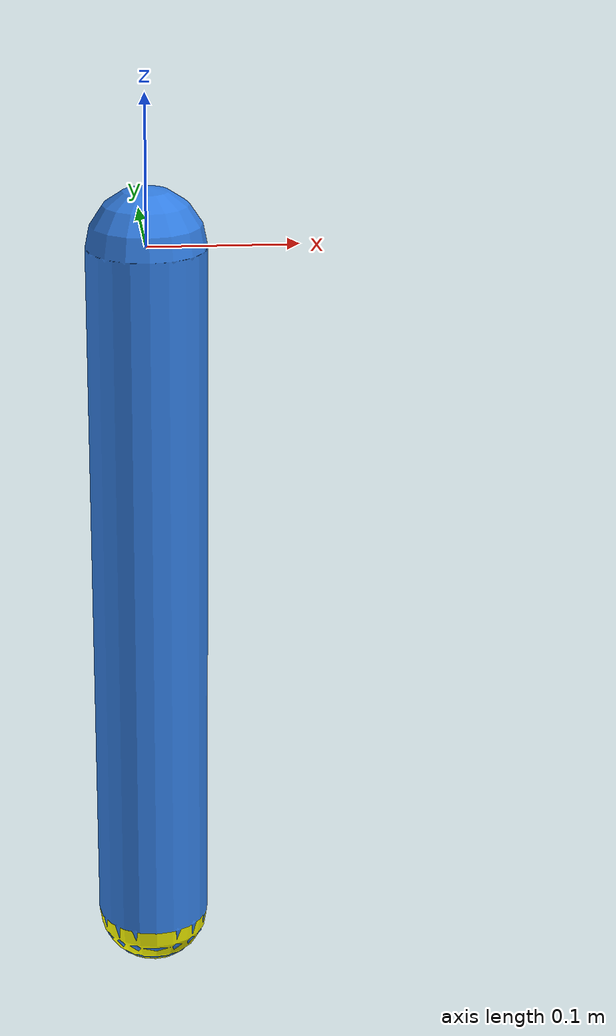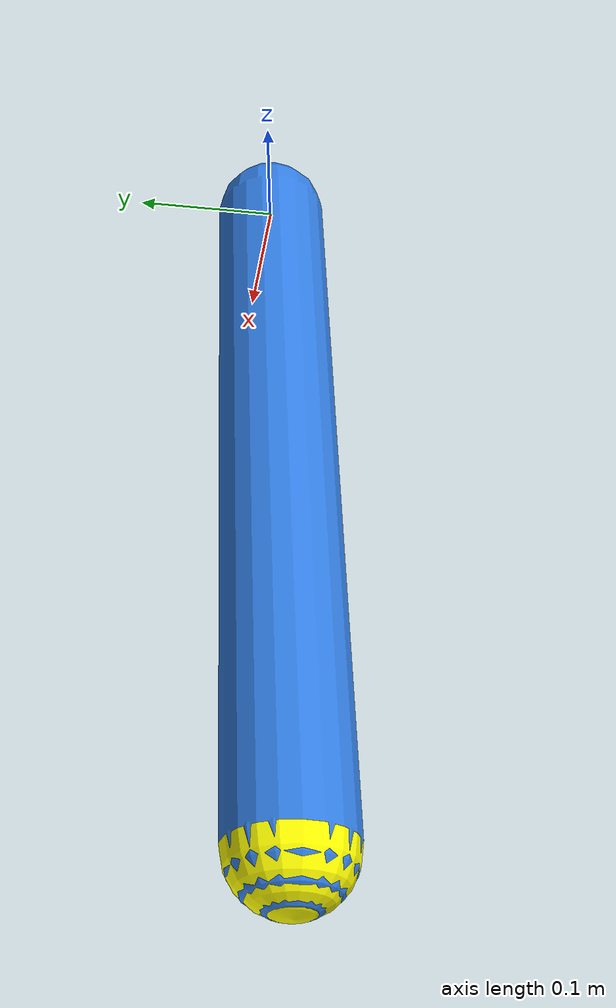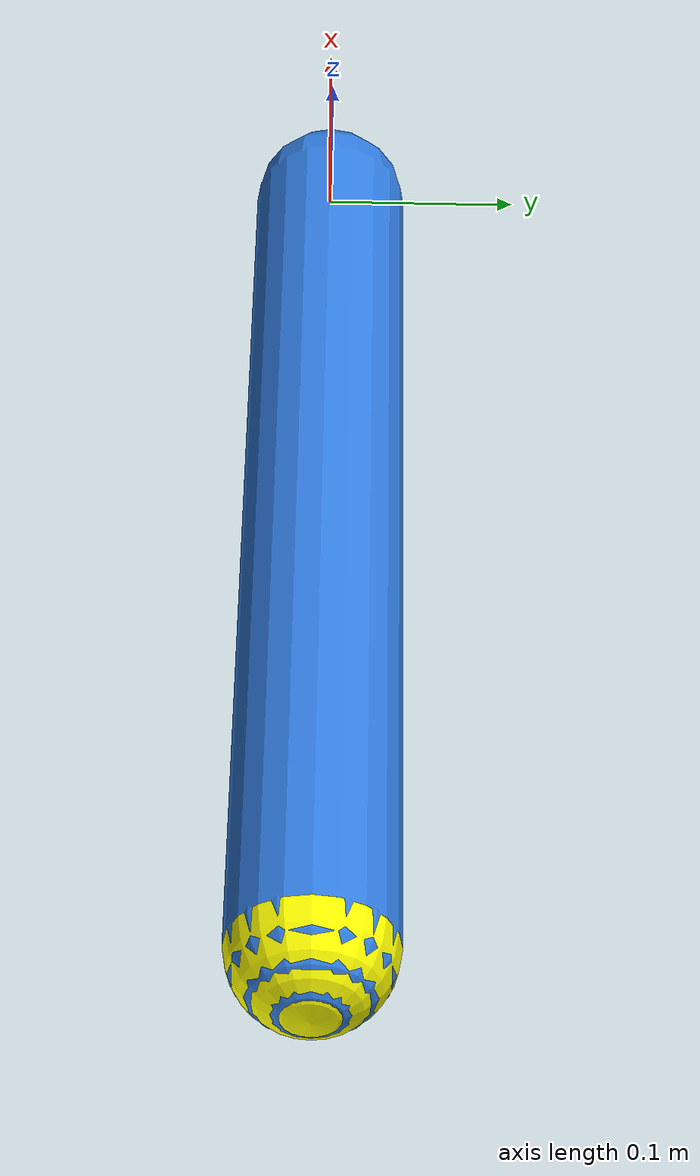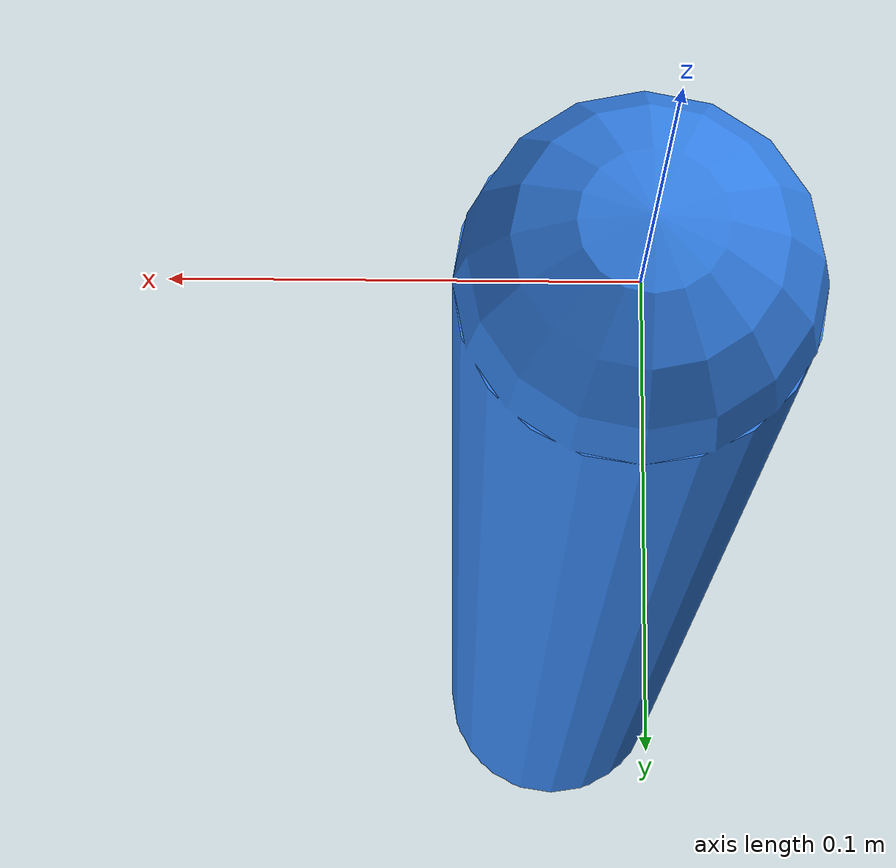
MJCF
<mujoco model="knob">
  <compiler angle="radian" autolimits="true"/>
  <option timestep="0.002" integrator="RK4"/>
  <worldbody>
    <light name="top" pos="0 0 2"/>

    <body name="pivot" pos="0 0 0">
      <geom type="sphere" size="0.02" mass="0.04" rgba="0 0 0 1"/>

      <body name="link1" pos="0 0 0">
        <joint name="joint1" type="hinge" axis="0 1 0" range="-3.141592 3.141592"/>
        <geom name="rod1" type="capsule" fromto="0 0 0  0 0 -0.5"
              size="0.04" rgba="0.2 0.5 0.9 1" mass="0.04"/>

        <body name="tip" pos="0 0 -0.5">
          <geom type="sphere" size="0.04" rgba="1 1 0 1"/>
        </body>
      </body>
    </body>
  </worldbody>

  <actuator>
    <motor name="torque1" joint="joint1" gear="1" ctrlrange="-5 5"/>
  </actuator>

  <keyframe>
    <key name="hanging" qpos="0" ctrl="0"/>
    <key name="setpoint1" qpos="-1.308996939" ctrl="0"/>
    <key name="setpoint2" qpos="-1.570796326" ctrl="0"/>
    <key name="setpoint3" qpos="-1.832595714" ctrl="0"/>
  </keyframe>
</mujoco>
